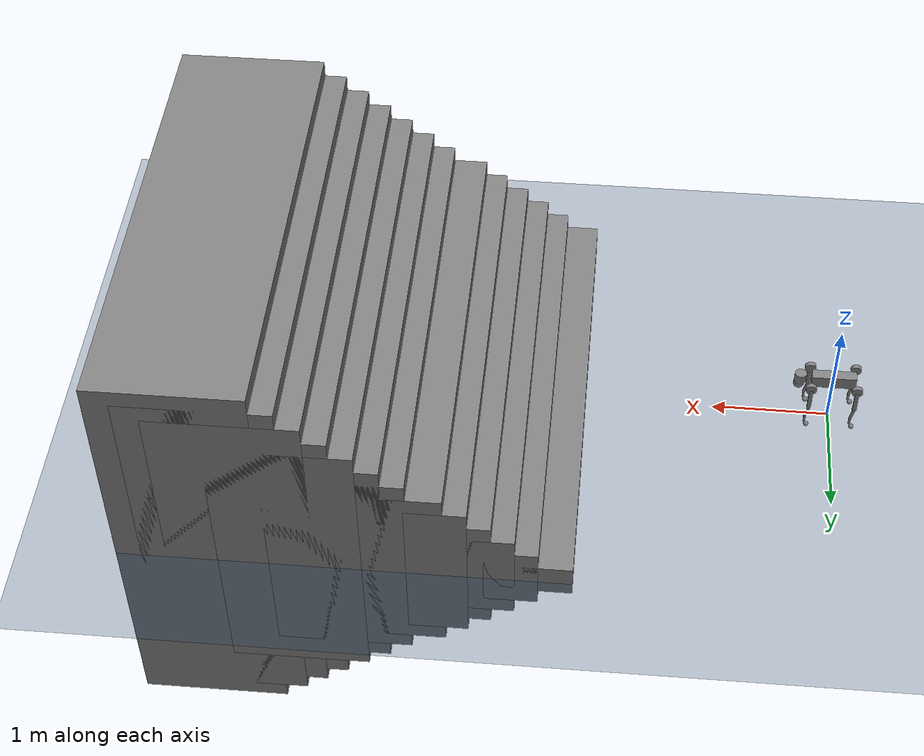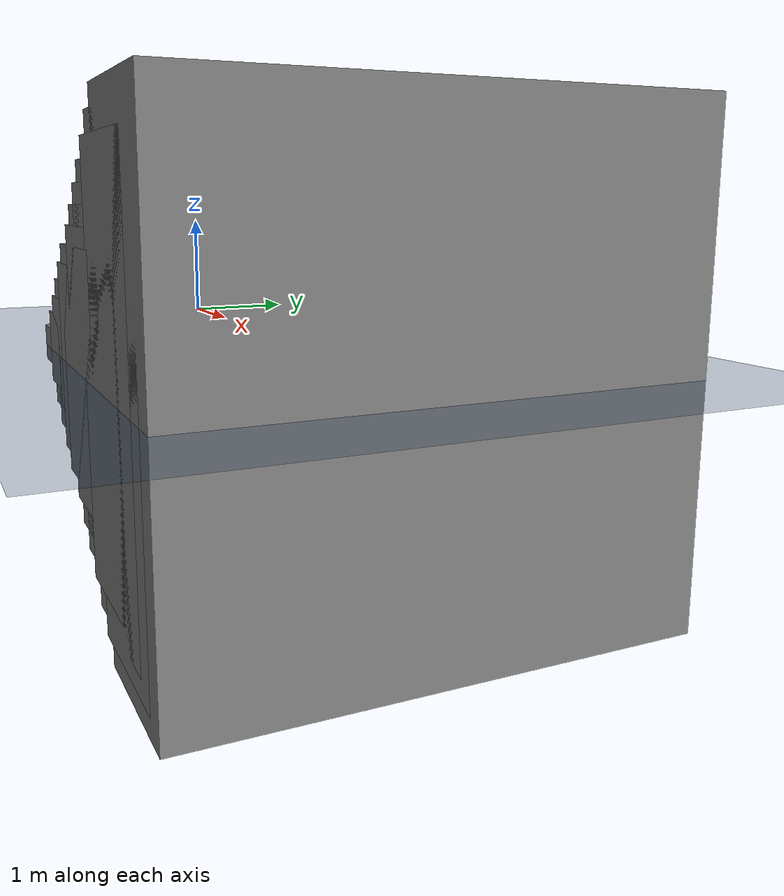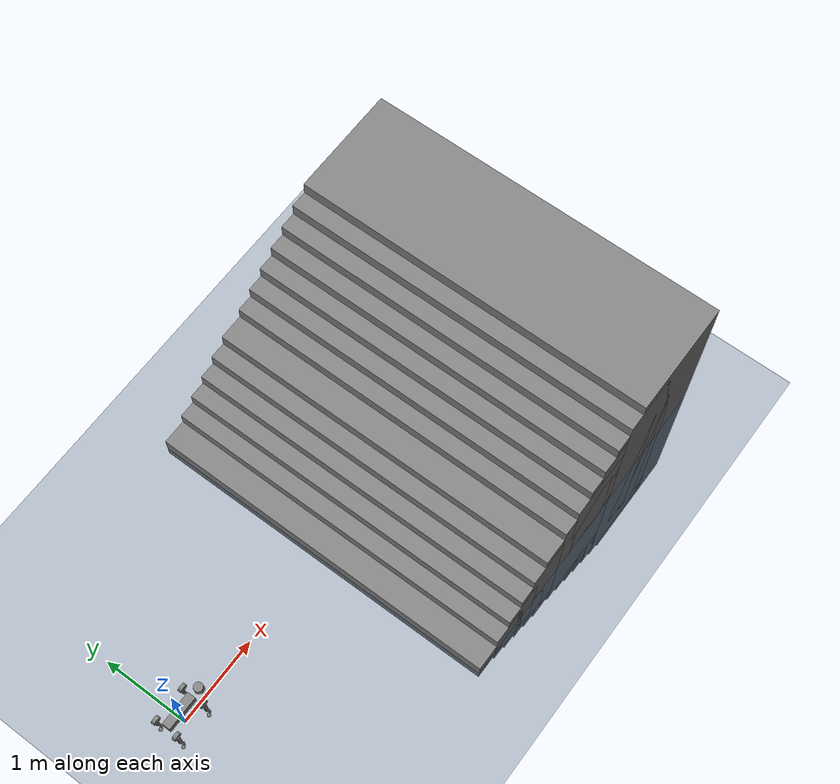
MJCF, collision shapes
<mujoco model="go2 scene">
  <include file="go2.xml"/>

  <statistic center="1.0 0.7 1.0" extent="0.8"/>

  <visual>
    <headlight diffuse="0.6 0.6 0.6" ambient="0.1 0.1 0.1" specular="0.9 0.9 0.9"/>
    <rgba haze="0.15 0.25 0.35 1"/>
    <global azimuth="-140" elevation="-20"/>
  </visual>

  <asset>
    <texture type="skybox" builtin="flat" rgb1="0 0 0" rgb2="0 0 0" width="512" height="3072"/>
    <texture type="2d" name="groundplane" builtin="checker" mark="edge" rgb1="0.2 0.3 0.4" rgb2="0.1 0.2 0.3" markrgb="0.8 0.8 0.8" width="300" height="300"/>
    <material name="groundplane" texture="groundplane" texuniform="true" texrepeat="5 5" reflectance="0.2"/>
  </asset>

  <worldbody>
    <light pos="1 0 3.5" dir="0 0 -1" directional="true"/>
    <geom name="floor" size="0 0 0.05" type="plane" material="groundplane"/>

    <geom pos="2.3 0 0.02" type="box"  size="0.2 2 0.15" quat="1.0 0 0 0"/>
    <geom pos="2.6 0 0.02" type="box"  size="0.22 2 0.3" quat="1.0 0 0 0"/>
    <geom pos="2.8 0 0.02" type="box"  size="0.23 2 0.45" quat="1.0 0 0 0"/>
    <geom pos="3 0 0.02" type="box"  size="0.24 2 0.6" quat="1.0 0 0 0"/>
    <geom pos="3.2 0 0.02" type="box"  size="0.25 2 0.75" quat="1.0 0 0 0"/>
    <geom pos="3.7 0 0.02" type="box"  size="0.56 2 0.9" quat="1.0 0 0 0"/>
    <geom pos="4 0 0.02" type="box"  size="0.57 2 1.05" quat="1.0 0 0 0"/>
    <geom pos="4.2 0 0.02" type="box"  size="0.58 2 1.2" quat="1.0 0 0 0"/>
    <geom pos="4.4 0 0.02" type="box"  size="0.59 2 1.35" quat="1.0 0 0 0"/>
    <geom pos="4.6 0 0.02" type="box"  size="0.6 2 1.5" quat="1.0 0 0 0"/>
    <geom pos="4.8 0 0.02" type="box"  size="0.61 2 1.65" quat="1.0 0 0 0"/>
    <geom pos="5 0 0.02" type="box"  size="0.62 2 1.8" quat="1.0 0 0 0"/>
    <geom pos="5.2 0 0.02" type="box"  size="0.63 2 1.95" quat="1.0 0 0 0"/>

  </worldbody>
</mujoco>

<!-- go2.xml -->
<mujoco model="go2">
  <compiler angle="radian" meshdir="meshes" autolimits="true" />

  <option cone="elliptic" impratio="100" />

  <default>
    <default class="go2">
      <geom friction="0.6 0.6" margin="0.001" solref = "0.005 1" condim="3"/>
      <joint axis="0 1 0" damping="0.1" armature="0.01" frictionloss="0.2"/>
      <motor ctrlrange="-23.7 23.7"/>
      <default class="abduction">
        <joint axis="1 0 0" range="-1.0472 1.0472"/>
      </default>
      <default class="hip">
        <default class="front_hip">
          <joint range="-1.5708 3.4907"/>
        </default>
        <default class="back_hip">
          <joint range="-0.5236 4.5379"/>
        </default>
      </default>
      <default class="knee">
        <joint range="-2.7227 -0.83776"/>
        <motor ctrlrange="-45.43 45.43"/>
      </default>
      <default class="visual">
        <geom type="mesh" contype="0" conaffinity="0" group="2"/>
      </default>
      <default class="collision">
        <geom group="3"/>
        <default class="foot">
          <geom size="0.022" pos="-0.002 0 -0.213" priority="1" condim="6"
            friction="0.6 0.02 0.01"/>
        </default>
      </default>
    </default>
  </default>

  <asset>
    <material name="metal" rgba=".9 .95 .95 1" />
    <material name="black" rgba="0 0 0 1" />
    <material name="white" rgba="1 1 1 1" />
    <material name="gray" rgba="0.671705 0.692426 0.774270 1" />

    <mesh file="base_0.obj" />
    <mesh file="base_1.obj" />
    <mesh file="base_2.obj" />
    <mesh file="base_3.obj" />
    <mesh file="base_4.obj" />
    <mesh file="hip_0.obj" />
    <mesh file="hip_1.obj" />
    <mesh file="thigh_0.obj" />
    <mesh file="thigh_1.obj" />
    <mesh file="thigh_mirror_0.obj" />
    <mesh file="thigh_mirror_1.obj" />
    <mesh file="calf_0.obj" />
    <mesh file="calf_1.obj" />
    <mesh file="calf_mirror_0.obj" />
    <mesh file="calf_mirror_1.obj" />
    <mesh file="foot.obj" />
  </asset>

  <worldbody>
    <body name="base_link" pos="0 0 0.45" childclass="go2">
      <inertial pos="0.021112 0 -0.005366" quat="-0.000543471 0.713435 -0.00173769 0.700719"
        mass="6.921"
        diaginertia="0.107027 0.0980771 0.0244531" />
      <freejoint />
      <geom mesh="base_2" material="black" class="visual" />
      <geom mesh="base_3" material="white" class="visual" />
      <geom mesh="base_4" material="gray" class="visual" />
      <geom size="0.1881 0.04675 0.057" type="box" class="collision" />
      <geom size="0.05 0.045" pos="0.285 0 0.01" type="cylinder" class="collision" />
      <geom size="0.047" pos="0.293 0 -0.06" class="collision" />
      <site name="imu" pos="-0.02557 0 0.04232" />
      <body name="FL_hip" pos="0.1934 0.0465 0">
        <inertial pos="-0.0054 0.00194 -0.000105" quat="0.497014 0.499245 0.505462 0.498237"
          mass="0.678"
          diaginertia="0.00088403 0.000596003 0.000479967" />
        <joint name="FL_hip_joint" class="abduction" />
        <geom mesh="hip_0" material="metal" class="visual" />
        <geom mesh="hip_1" material="gray" class="visual" />
        <geom size="0.046 0.02" pos="0 0.08 0" quat="1 1 0 0" type="cylinder" class="collision" />
        <body name="FL_thigh" pos="0 0.0955 0">
          <inertial pos="-0.00374 -0.0223 -0.0327" quat="0.829533 0.0847635 -0.0200632 0.551623"
            mass="1.152"
            diaginertia="0.00594973 0.00584149 0.000878787" />
          <joint name="FL_thigh_joint" class="front_hip" />
          <geom mesh="thigh_0" material="metal" class="visual" />
          <geom mesh="thigh_1" material="gray" class="visual" />
          <geom size="0.1065 0.01225 0.017" pos="0 0 -0.1065" quat="0.707107 0 0.707107 0"
            type="box" class="collision" />
          <body name="FL_calf" pos="0 0 -0.213">
            <inertial pos="0.00629595 -0.000622121 -0.141417"
              quat="0.710672 0.00154099 -0.00450087 0.703508"
              mass="0.241352" diaginertia="0.0014901 0.00146356 5.31397e-05" />
            <joint name="FL_calf_joint" class="knee" />
            <geom mesh="calf_0" material="gray" class="visual" />
            <geom mesh="calf_1" material="black" class="visual" />
            <geom size="0.012 0.06" pos="0.008 0 -0.06" quat="0.994493 0 -0.104807 0"
              type="cylinder" class="collision" />
            <geom size="0.011 0.0325" pos="0.02 0 -0.148" quat="0.999688 0 0.0249974 0"
              type="cylinder" class="collision" />
            <geom pos="0 0 -0.213" mesh="foot" class="visual" material="black" />
            <geom name="FL" class="foot" />
            <body name="FL_foot" pos="0 0 -0.213" />
          </body>
        </body>
      </body>
      <body name="FR_hip" pos="0.1934 -0.0465 0">
        <inertial pos="-0.0054 -0.00194 -0.000105" quat="0.498237 0.505462 0.499245 0.497014"
          mass="0.678"
          diaginertia="0.00088403 0.000596003 0.000479967" />
        <joint name="FR_hip_joint" class="abduction" />
        <geom mesh="hip_0" material="metal" class="visual" quat="4.63268e-05 1 0 0" />
        <geom mesh="hip_1" material="gray" class="visual" quat="4.63268e-05 1 0 0" />
        <geom size="0.046 0.02" pos="0 -0.08 0" quat="0.707107 0.707107 0 0" type="cylinder"
          class="collision" />
        <body name="FR_thigh" pos="0 -0.0955 0">
          <inertial pos="-0.00374 0.0223 -0.0327" quat="0.551623 -0.0200632 0.0847635 0.829533"
            mass="1.152"
            diaginertia="0.00594973 0.00584149 0.000878787" />
          <joint name="FR_thigh_joint" class="front_hip" />
          <geom mesh="thigh_mirror_0" material="metal" class="visual" />
          <geom mesh="thigh_mirror_1" material="gray" class="visual" />
          <geom size="0.1065 0.01225 0.017" pos="0 0 -0.1065" quat="0.707107 0 0.707107 0"
            type="box" class="collision" />
          <body name="FR_calf" pos="0 0 -0.213">
            <inertial pos="0.00629595 0.000622121 -0.141417"
              quat="0.703508 -0.00450087 0.00154099 0.710672"
              mass="0.241352" diaginertia="0.0014901 0.00146356 5.31397e-05" />
            <joint name="FR_calf_joint" class="knee" />
            <geom mesh="calf_mirror_0" material="gray" class="visual" />
            <geom mesh="calf_mirror_1" material="black" class="visual" />
            <geom size="0.013 0.06" pos="0.01 0 -0.06" quat="0.995004 0 -0.0998334 0"
              type="cylinder" class="collision" />
            <geom size="0.011 0.0325" pos="0.02 0 -0.148" quat="0.999688 0 0.0249974 0"
              type="cylinder" class="collision" />
            <geom pos="0 0 -0.213" mesh="foot" class="visual" material="black" />
            <geom name="FR" class="foot" />
            <body name="FR_foot" pos="0 0 -0.213" />
          </body>
        </body>
      </body>
      <body name="RL_hip" pos="-0.1934 0.0465 0">
        <inertial pos="0.0054 0.00194 -0.000105" quat="0.505462 0.498237 0.497014 0.499245"
          mass="0.678"
          diaginertia="0.00088403 0.000596003 0.000479967" />
        <joint name="RL_hip_joint" class="abduction" />
        <geom mesh="hip_0" material="metal" class="visual" quat="4.63268e-05 0 1 0" />
        <geom mesh="hip_1" material="gray" class="visual" quat="4.63268e-05 0 1 0" />
        <geom size="0.046 0.02" pos="0 0.08 0" quat="0.707107 0.707107 0 0" type="cylinder"
          class="collision" />
        <body name="RL_thigh" pos="0 0.0955 0">
          <inertial pos="-0.00374 -0.0223 -0.0327" quat="0.829533 0.0847635 -0.0200632 0.551623"
            mass="1.152"
            diaginertia="0.00594973 0.00584149 0.000878787" />
          <joint name="RL_thigh_joint" class="back_hip" />
          <geom mesh="thigh_0" material="metal" class="visual" />
          <geom mesh="thigh_1" material="gray" class="visual" />
          <geom size="0.1065 0.01225 0.017" pos="0 0 -0.1065" quat="0.707107 0 0.707107 0"
            type="box" class="collision" />
          <body name="RL_calf" pos="0 0 -0.213">
            <inertial pos="0.00629595 -0.000622121 -0.141417"
              quat="0.710672 0.00154099 -0.00450087 0.703508"
              mass="0.241352" diaginertia="0.0014901 0.00146356 5.31397e-05" />
            <joint name="RL_calf_joint" class="knee" />
            <geom mesh="calf_0" material="gray" class="visual" />
            <geom mesh="calf_1" material="black" class="visual" />
            <geom size="0.013 0.06" pos="0.01 0 -0.06" quat="0.995004 0 -0.0998334 0"
              type="cylinder" class="collision" />
            <geom size="0.011 0.0325" pos="0.02 0 -0.148" quat="0.999688 0 0.0249974 0"
              type="cylinder" class="collision" />
            <geom pos="0 0 -0.213" mesh="foot" class="visual" material="black" />
            <geom name="RL" class="foot" />
            <body name="RL_foot" pos="0 0 -0.213" />
          </body>
        </body>
      </body>
      <body name="RR_hip" pos="-0.1934 -0.0465 0">
        <inertial pos="0.0054 -0.00194 -0.000105" quat="0.499245 0.497014 0.498237 0.505462"
          mass="0.678"
          diaginertia="0.00088403 0.000596003 0.000479967" />
        <joint name="RR_hip_joint" class="abduction" />
        <geom mesh="hip_0" material="metal" class="visual"
          quat="2.14617e-09 4.63268e-05 4.63268e-05 -1" />
        <geom mesh="hip_1" material="gray" class="visual"
          quat="2.14617e-09 4.63268e-05 4.63268e-05 -1" />
        <geom size="0.046 0.02" pos="0 -0.08 0" quat="0.707107 0.707107 0 0" type="cylinder"
          class="collision" />
        <body name="RR_thigh" pos="0 -0.0955 0">
          <inertial pos="-0.00374 0.0223 -0.0327" quat="0.551623 -0.0200632 0.0847635 0.829533"
            mass="1.152"
            diaginertia="0.00594973 0.00584149 0.000878787" />
          <joint name="RR_thigh_joint" class="back_hip" />
          <geom mesh="thigh_mirror_0" material="metal" class="visual" />
          <geom mesh="thigh_mirror_1" material="gray" class="visual" />
          <geom size="0.1065 0.01225 0.017" pos="0 0 -0.1065" quat="0.707107 0 0.707107 0"
            type="box" class="collision" />
          <body name="RR_calf" pos="0 0 -0.213">
            <inertial pos="0.00629595 0.000622121 -0.141417"
              quat="0.703508 -0.00450087 0.00154099 0.710672"
              mass="0.241352" diaginertia="0.0014901 0.00146356 5.31397e-05" />
            <joint name="RR_calf_joint" class="knee" />
            <geom mesh="calf_mirror_0" material="gray" class="visual" />
            <geom mesh="calf_mirror_1" material="black" class="visual" />
            <geom size="0.013 0.06" pos="0.01 0 -0.06" quat="0.995004 0 -0.0998334 0"
              type="cylinder" class="collision" />
            <geom size="0.011 0.0325" pos="0.02 0 -0.148" quat="0.999688 0 0.0249974 0"
              type="cylinder" class="collision" />
            <geom pos="0 0 -0.213" mesh="foot" class="visual" material="black" />
            <geom name="RR" class="foot" />
            <body name="RR_foot" pos="0 0 -0.213" />
          </body>
        </body>
      </body>
    </body>
  </worldbody>

  <actuator>
    <motor class="abduction" name="FL_hip" joint="FL_hip_joint" />
    <motor class="hip" name="FL_thigh" joint="FL_thigh_joint" />
    <motor class="knee" name="FL_calf" joint="FL_calf_joint" />
    <motor class="abduction" name="FR_hip" joint="FR_hip_joint" />
    <motor class="hip" name="FR_thigh" joint="FR_thigh_joint" />
    <motor class="knee" name="FR_calf" joint="FR_calf_joint" />
    <motor class="abduction" name="RL_hip" joint="RL_hip_joint" />
    <motor class="hip" name="RL_thigh" joint="RL_thigh_joint" />
    <motor class="knee" name="RL_calf" joint="RL_calf_joint" />
    <motor class="abduction" name="RR_hip" joint="RR_hip_joint" />
    <motor class="hip" name="RR_thigh" joint="RR_thigh_joint" />
    <motor class="knee" name="RR_calf" joint="RR_calf_joint" />
  </actuator>

</mujoco>
